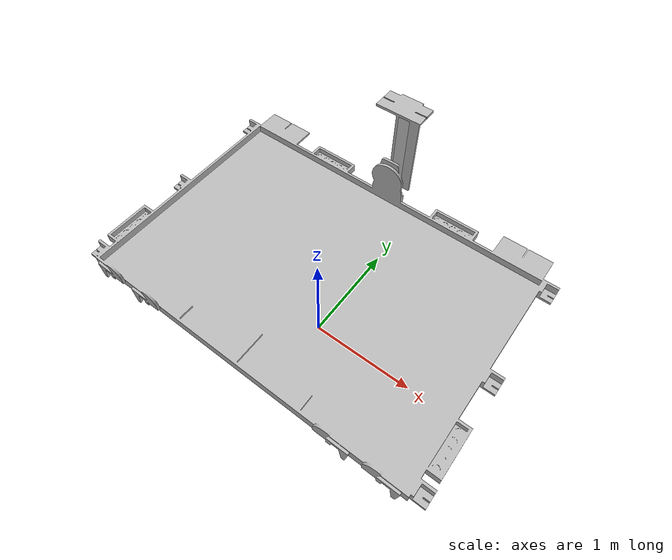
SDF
<?xml version='1.0'?>
<sdf version="1.4">
  <model name="table_eurobot_2020">
    <pose>0 0 0 0 0 0</pose>
    <static>true</static>

    <link name="table">
              <inertial>
                <mass>15</mass>
                <inertia> <!-- inertias are tricky to compute -->
                  <!-- http://gazebosim.org/tutorials?tut=inertia&cat=build_robot -->
                  <ixx>0.083</ixx>       <!-- for a box: ixx = 0.083 * mass * (y*y + z*z) -->
                  <ixy>0.0</ixy>         <!-- for a box: ixy = 0 -->
                  <ixz>0.0</ixz>         <!-- for a box: ixz = 0 -->
                  <iyy>0.083</iyy>       <!-- for a box: iyy = 0.083 * mass * (x*x + z*z) -->
                  <iyz>0.0</iyz>         <!-- for a box: iyz = 0 -->
                  <izz>0.083</izz>       <!-- for a box: izz = 0.083 * mass * (x*x + y*y) -->
                </inertia>
              </inertial>

              <collision name="table_collision">
                <pose>0 0 0.9 0 0 0</pose>
                <geometry>
                   <mesh>
                        <uri>model://table_eurobot_2020/meshes/table.dae</uri>
                        <scale>1 1 1 </scale>
                   </mesh>
                </geometry>
              </collision>

              <visual name="table_visual">
               <pose>-1.5 1 0.9 1.57 0 0</pose>
                <geometry>
                  <mesh>
                        <uri>model://table_eurobot_2020/meshes/table_tex2.dae</uri>
                        <scale>1 1 1 </scale>
                   </mesh>
                </geometry>
              </visual>

      <collision name="table_stand_collision">
      <pose>0 0 0.45 0 0 0</pose>
        <geometry>
          <box> <size>2 1 0.9</size>   </box>
        </geometry>
      </collision>

      <visual name="table_stand_visual">
      <pose>0 0 0.45 0 0 0</pose>
         <geometry>
          <box> <size>2 1 0.9</size>   </box>
        </geometry>
      </visual>

    </link>

  </model>
</sdf>
